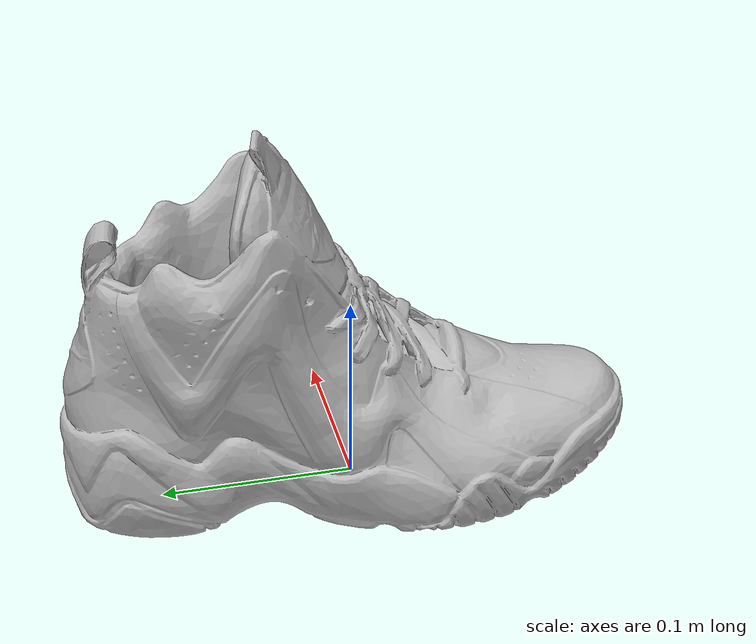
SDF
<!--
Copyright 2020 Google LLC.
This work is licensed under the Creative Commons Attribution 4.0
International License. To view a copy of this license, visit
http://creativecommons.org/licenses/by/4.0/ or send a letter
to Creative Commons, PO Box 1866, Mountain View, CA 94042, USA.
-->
<?xml version="1.0" ?>
<sdf version="1.6">
  <model name="Reebok_KAMIKAZE_II_MID">
    <link name="link_0">
      <visual name="visual">
        <geometry>
          <mesh>
            <uri>meshes/model.obj</uri>
          </mesh>
        </geometry>
      </visual>
      <collision name="collision_0">
        <geometry>
          <mesh>
            <uri>meshes/model.obj</uri>
          </mesh>
        </geometry>
      </collision>
    </link>
  </model>
</sdf>
